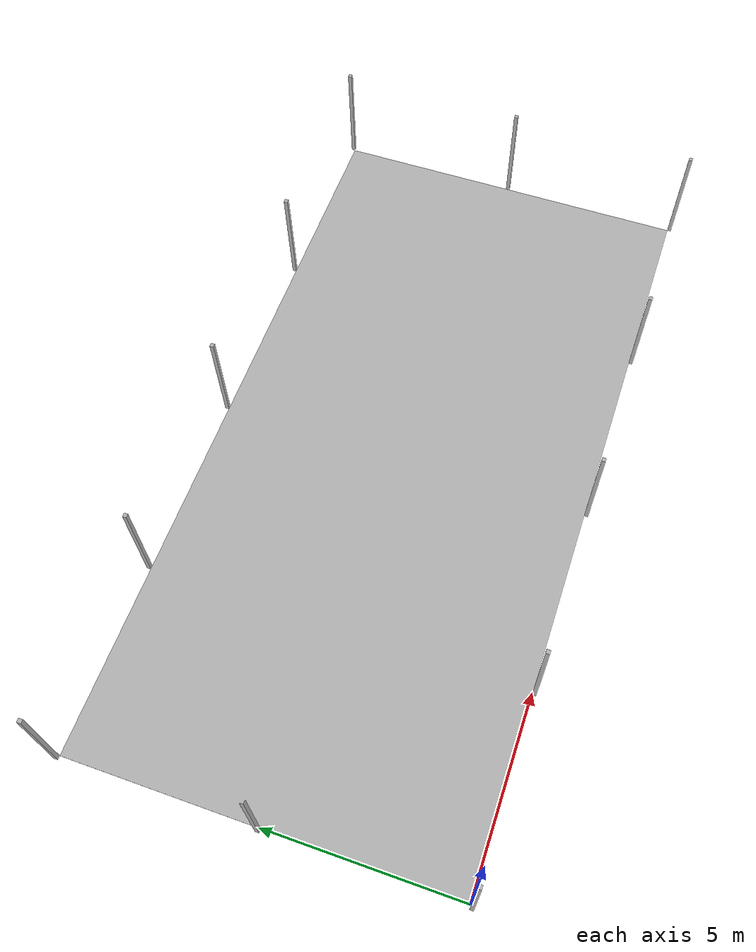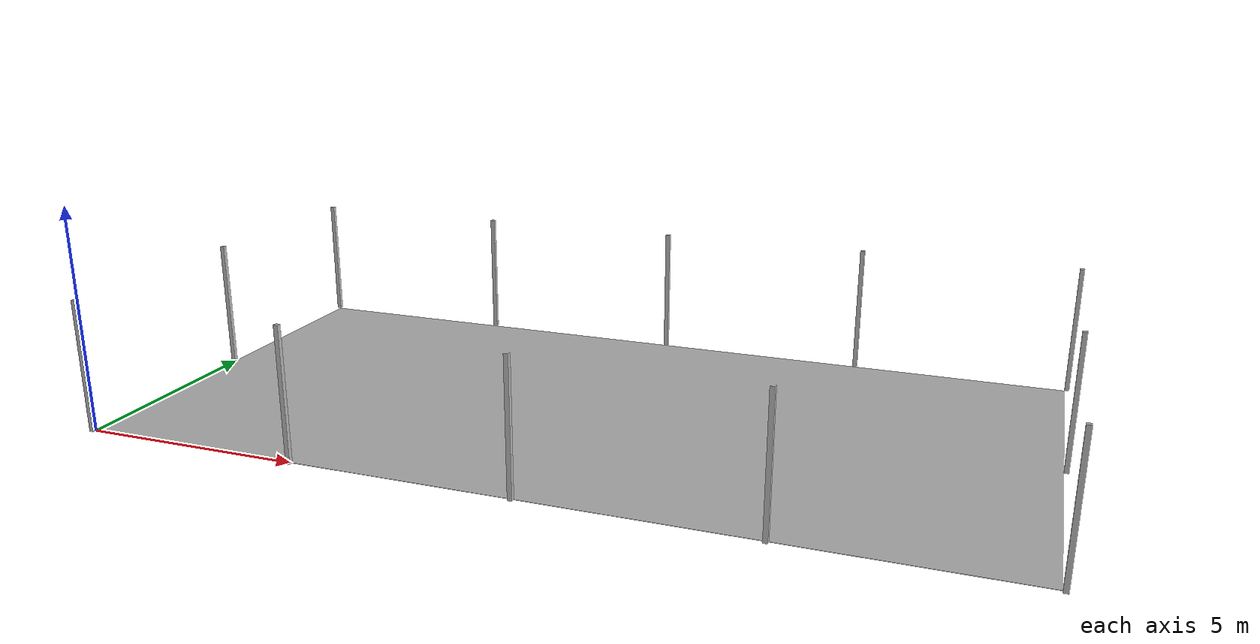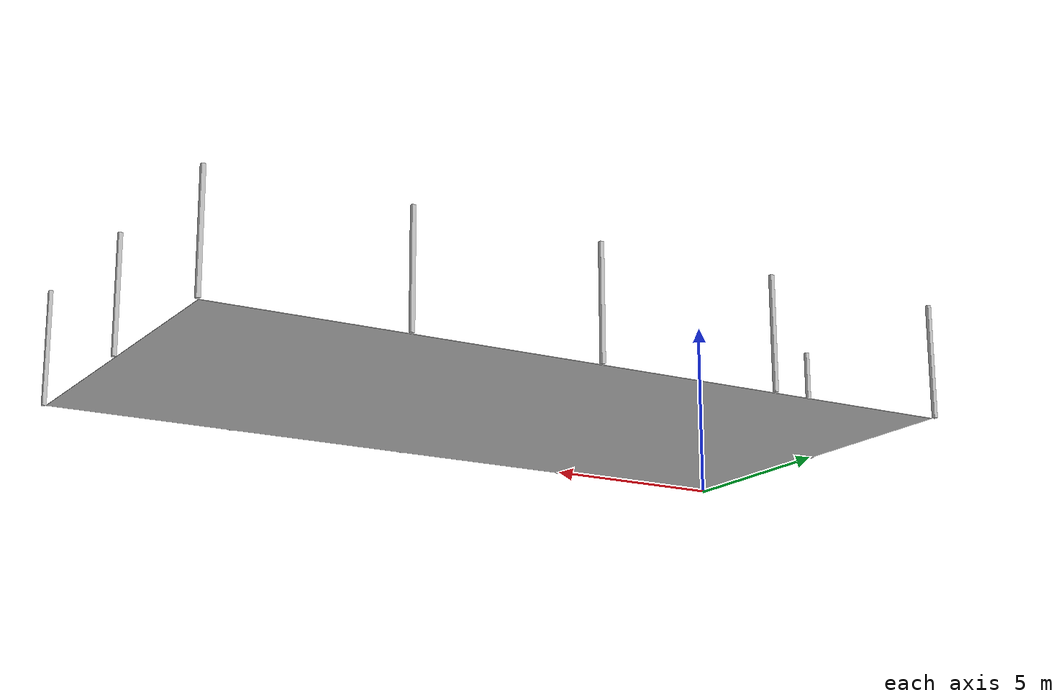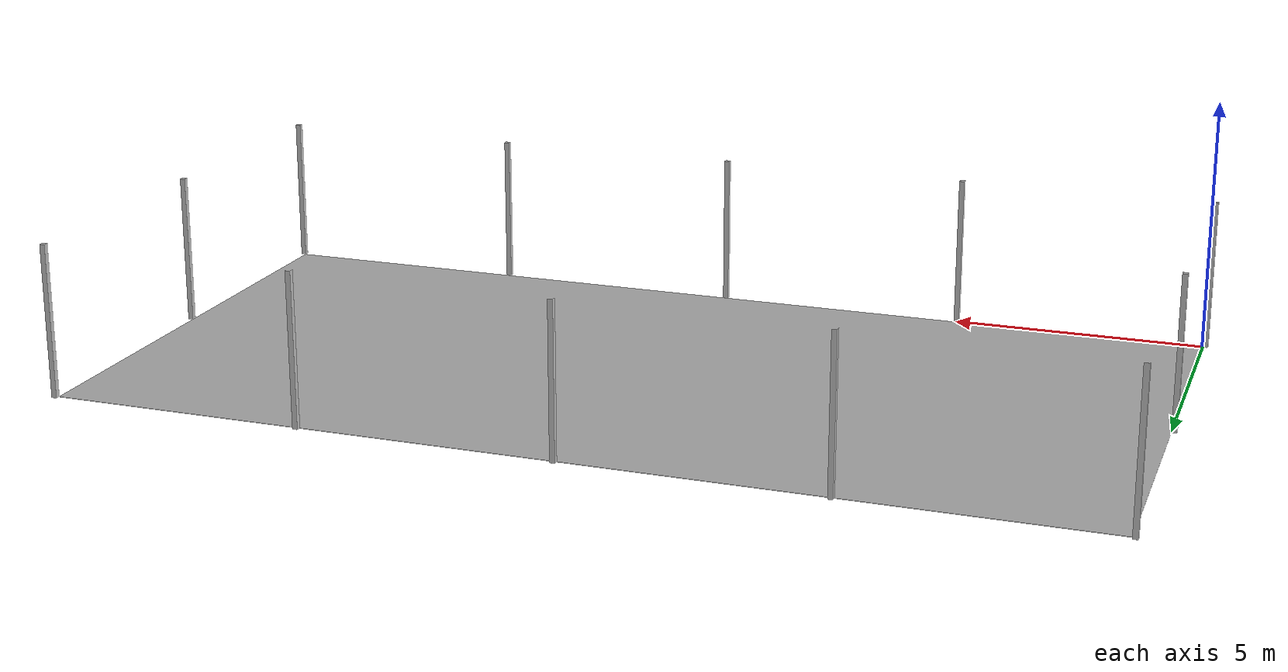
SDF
<?xml version="1.0" ?>
<sdf version="1.5">
  <model name="race_field">
    <static>true</static>
    <link name="link">
      <pose>0 0 0 0 0 0</pose>
      <collision name="collision">
        <geometry>
            <mesh>
              <uri>
                model://race_field/mesh/campo_gara.stl
              </uri>
              <scale>
                0.001 0.001 0.001
              </scale>
            </mesh>
        </geometry>
      </collision>
      <visual name="visual">
        <cast_shadows>true</cast_shadows>
        <geometry>
            <mesh>
              <uri>
                model://race_field/mesh/campo_gara.stl
              </uri>
              <scale>
                0.001 0.001 0.001
              </scale>
            </mesh>
        </geometry>
        <material>Gazebo/DarkGray</material>
      </visual>
    </link>
  </model>
</sdf>
